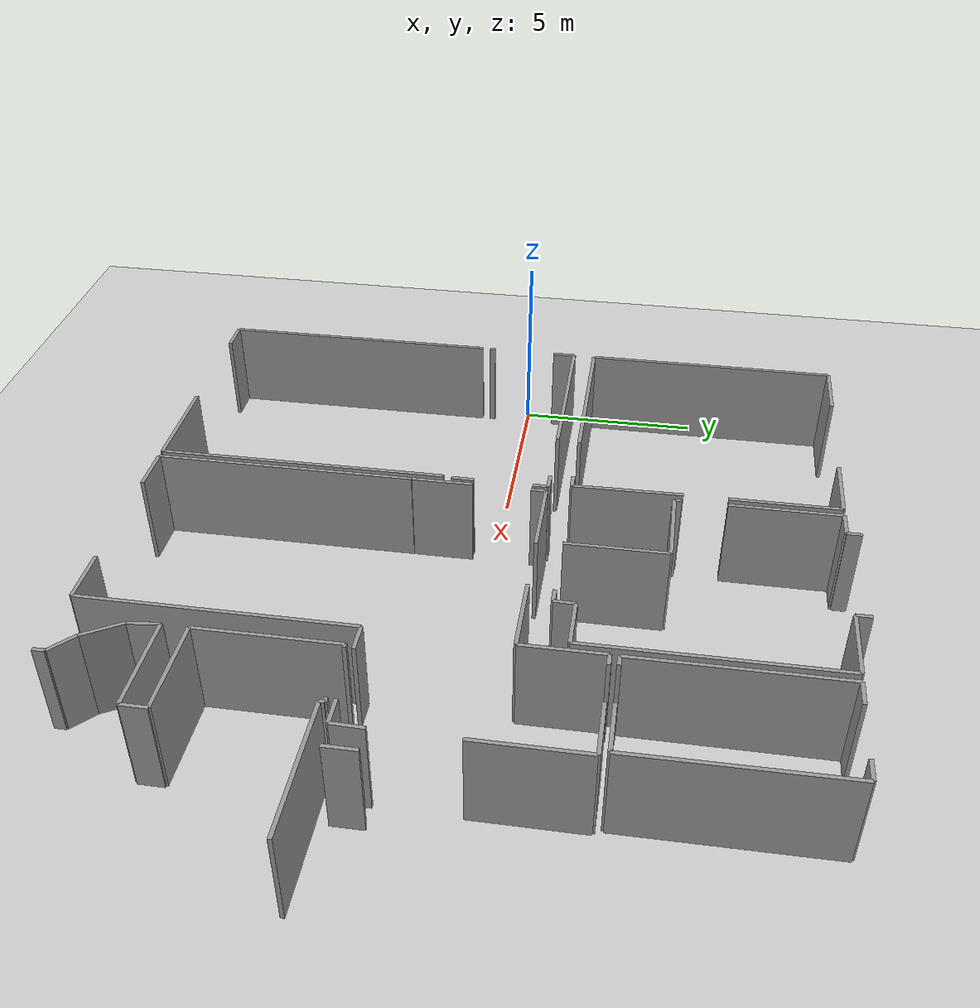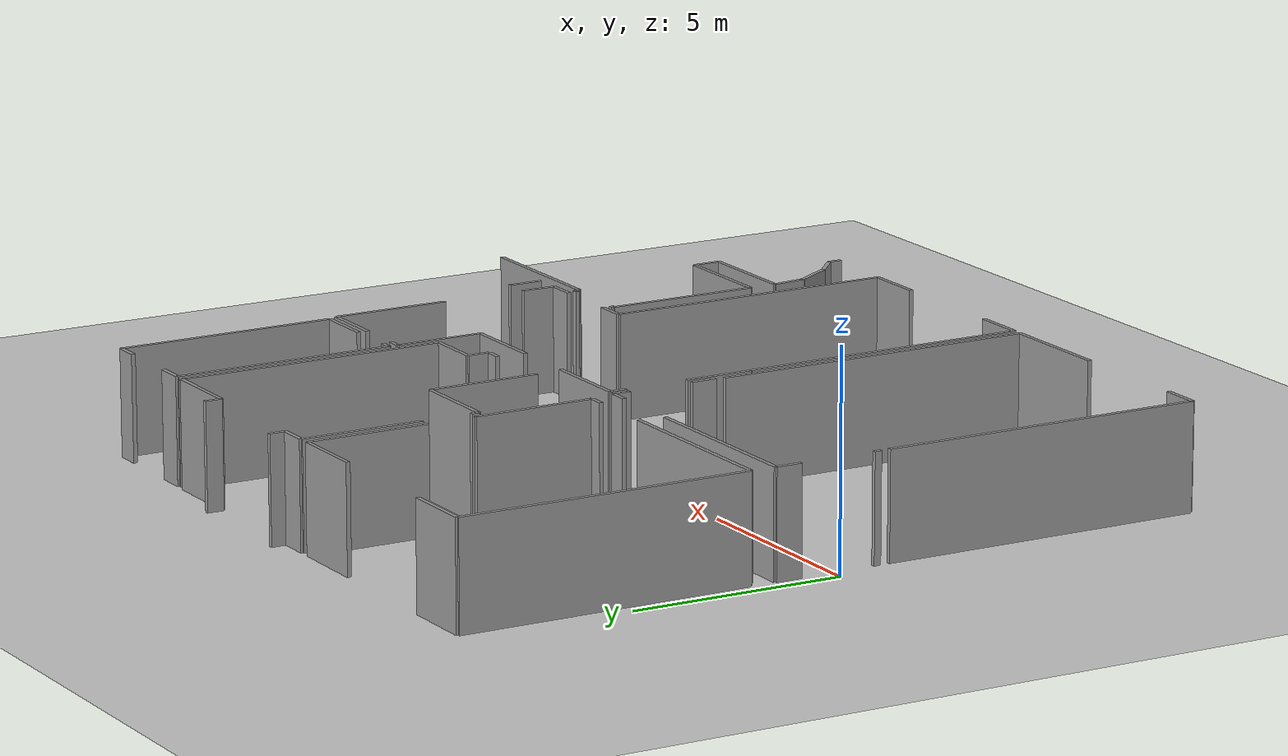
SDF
<sdf version="1.6">
 <world name="default">
  <model name="ground_plane">
   <static>1</static>
   <link name="link">
    <collision name="collision">
     <geometry><plane><normal>0 0 1</normal><size>100 100</size></plane></geometry>
     <surface><friction><ode><mu>100</mu><mu2>50</mu2></ode></friction></surface>
    </collision>
    <visual name="visual">
     <cast_shadows>0</cast_shadows>
     <geometry><plane><normal>0 0 1</normal><size>100 100</size></plane></geometry>
     <material>
      <script><uri>file://media/materials/scripts/gazebo.material</uri><name>Gazebo/Grey</name></script>
     </material>
    </visual>
   </link>
  </model>
  <model name="0510034869_A-40">
   <static>1</static>
   <link name="Wall_114">
    <collision name="Wall_114_Collision">
     <geometry><box><size>0.40546031746 0.1 2.5</size></box></geometry>
     <pose>0.20273015873 0 1.25 0 0 0</pose>
    </collision>
    <visual name="Wall_114_Visual">
     <pose>0.20273015873 0 1.25 0 0 0</pose>
     <geometry><box><size>0.40546031746 0.1 2.5</size></box></geometry>
     <material>
      <script><uri>file://media/materials/scripts/gazebo.material</uri><name>Gazebo/Grey</name></script>
      <ambient>1 1 1 1</ambient>
     </material>
    </visual>
    <pose>39.5118730159 -7.32088888889 0 0 0 3.14159265359</pose>
   </link>
   <link name="Wall_115">
    <collision name="Wall_115_Collision">
     <geometry><box><size>4.63771428571 0.1 2.5</size></box></geometry>
     <pose>2.31885714286 0 1.25 0 0 0</pose>
    </collision>
    <visual name="Wall_115_Visual">
     <pose>2.31885714286 0 1.25 0 0 0</pose>
     <geometry><box><size>4.63771428571 0.1 2.5</size></box></geometry>
     <material>
      <script><uri>file://media/materials/scripts/gazebo.material</uri><name>Gazebo/Grey</name></script>
      <ambient>1 1 1 1</ambient>
     </material>
    </visual>
    <pose>37.5080634921 -7.32088888889 0 0 0 3.14159265359</pose>
   </link>
   <link name="Wall_116">
    <collision name="Wall_116_Collision">
     <geometry><box><size>6.91301587302 0.1 2.5</size></box></geometry>
     <pose>3.45650793651 0 1.25 0 0 0</pose>
    </collision>
    <visual name="Wall_116_Visual">
     <pose>3.45650793651 0 1.25 0 0 0</pose>
     <geometry><box><size>6.91301587302 0.1 2.5</size></box></geometry>
     <material>
      <script><uri>file://media/materials/scripts/gazebo.material</uri><name>Gazebo/Grey</name></script>
      <ambient>1 1 1 1</ambient>
     </material>
    </visual>
    <pose>32.8703492063 -7.32088888889 0 0 0 1.57079632679</pose>
   </link>
   <link name="Wall_117">
    <collision name="Wall_117_Collision">
     <geometry><box><size>1.69384126984 0.1 2.5</size></box></geometry>
     <pose>0.846920634921 0 1.25 0 0 0</pose>
    </collision>
    <visual name="Wall_117_Visual">
     <pose>0.846920634921 0 1.25 0 0 0</pose>
     <geometry><box><size>1.69384126984 0.1 2.5</size></box></geometry>
     <material>
      <script><uri>file://media/materials/scripts/gazebo.material</uri><name>Gazebo/Grey</name></script>
      <ambient>1 1 1 1</ambient>
     </material>
    </visual>
    <pose>32.8703492063 -0.407873015873 0 0 0 0.0</pose>
   </link>
   <link name="Wall_118">
    <collision name="Wall_118_Collision">
     <geometry><box><size>1.84457142857 0.1 2.5</size></box></geometry>
     <pose>0.922285714286 0 1.25 0 0 0</pose>
    </collision>
    <visual name="Wall_118_Visual">
     <pose>0.922285714286 0 1.25 0 0 0</pose>
     <geometry><box><size>1.84457142857 0.1 2.5</size></box></geometry>
     <material>
      <script><uri>file://media/materials/scripts/gazebo.material</uri><name>Gazebo/Grey</name></script>
      <ambient>1 1 1 1</ambient>
     </material>
    </visual>
    <pose>37.6275555556 -0.407873015873 0 0 0 0.0</pose>
   </link>
   <link name="Wall_119">
    <collision name="Wall_119_Collision">
     <geometry><box><size>2.88063492063 0.1 2.5</size></box></geometry>
     <pose>1.44031746032 0 1.25 0 0 0</pose>
    </collision>
    <visual name="Wall_119_Visual">
     <pose>1.44031746032 0 1.25 0 0 0</pose>
     <geometry><box><size>2.88063492063 0.1 2.5</size></box></geometry>
     <material>
      <script><uri>file://media/materials/scripts/gazebo.material</uri><name>Gazebo/Grey</name></script>
      <ambient>1 1 1 1</ambient>
     </material>
    </visual>
    <pose>39.4721269841 -0.407873015873 0 0 0 -1.57079632679</pose>
   </link>
   <link name="Wall_120">
    <collision name="Wall_120_Collision">
     <geometry><box><size>2.88040122062 0.1 2.5</size></box></geometry>
     <pose>1.44020061031 0 1.25 0 0 0</pose>
    </collision>
    <visual name="Wall_120_Visual">
     <pose>1.44020061031 0 1.25 0 0 0</pose>
     <geometry><box><size>2.88040122062 0.1 2.5</size></box></geometry>
     <material>
      <script><uri>file://media/materials/scripts/gazebo.material</uri><name>Gazebo/Grey</name></script>
      <ambient>1 1 1 1</ambient>
     </material>
    </visual>
    <pose>39.4721269841 -4.44076190476 0 0 0 -1.55699710574</pose>
   </link>
   <link name="Wall_125">
    <collision name="Wall_125_Collision">
     <geometry><box><size>2.79542857143 0.1 2.5</size></box></geometry>
     <pose>1.39771428571 0 1.25 0 0 0</pose>
    </collision>
    <visual name="Wall_125_Visual">
     <pose>1.39771428571 0 1.25 0 0 0</pose>
     <geometry><box><size>2.79542857143 0.1 2.5</size></box></geometry>
     <material>
      <script><uri>file://media/materials/scripts/gazebo.material</uri><name>Gazebo/Grey</name></script>
      <ambient>1 1 1 1</ambient>
     </material>
    </visual>
    <pose>39.608 -18.4011428571 0 0 0 3.14159265359</pose>
   </link>
   <link name="Wall_126">
    <collision name="Wall_126_Collision">
     <geometry><box><size>0.910095238095 0.1 2.5</size></box></geometry>
     <pose>0.455047619048 0 1.25 0 0 0</pose>
    </collision>
    <visual name="Wall_126_Visual">
     <pose>0.455047619048 0 1.25 0 0 0</pose>
     <geometry><box><size>0.910095238095 0.1 2.5</size></box></geometry>
     <material>
      <script><uri>file://media/materials/scripts/gazebo.material</uri><name>Gazebo/Grey</name></script>
      <ambient>1 1 1 1</ambient>
     </material>
    </visual>
    <pose>33.764952381 -18.4011428571 0 0 0 3.14159265359</pose>
   </link>
   <link name="Wall_127">
    <collision name="Wall_127_Collision">
     <geometry><box><size>7.70450793651 0.1 2.5</size></box></geometry>
     <pose>3.85225396825 0 1.25 0 0 0</pose>
    </collision>
    <visual name="Wall_127_Visual">
     <pose>3.85225396825 0 1.25 0 0 0</pose>
     <geometry><box><size>7.70450793651 0.1 2.5</size></box></geometry>
     <material>
      <script><uri>file://media/materials/scripts/gazebo.material</uri><name>Gazebo/Grey</name></script>
      <ambient>1 1 1 1</ambient>
     </material>
    </visual>
    <pose>32.8548571429 -18.4011428571 0 0 0 1.57079632679</pose>
   </link>
   <link name="Wall_128">
    <collision name="Wall_128_Collision">
     <geometry><box><size>7.70452535068 0.1 2.5</size></box></geometry>
     <pose>3.85226267534 0 1.25 0 0 0</pose>
    </collision>
    <visual name="Wall_128_Visual">
     <pose>3.85226267534 0 1.25 0 0 0</pose>
     <geometry><box><size>7.70452535068 0.1 2.5</size></box></geometry>
     <material>
      <script><uri>file://media/materials/scripts/gazebo.material</uri><name>Gazebo/Grey</name></script>
      <ambient>1 1 1 1</ambient>
     </material>
    </visual>
    <pose>39.5916190476 -10.6966349206 0 0 0 -1.56867017833</pose>
   </link>
   <link name="Wall_135">
    <collision name="Wall_135_Collision">
     <geometry><box><size>0.163301587302 0.1 2.5</size></box></geometry>
     <pose>0.0816507936508 0 1.25 0 0 0</pose>
    </collision>
    <visual name="Wall_135_Visual">
     <pose>0.0816507936508 0 1.25 0 0 0</pose>
     <geometry><box><size>0.163301587302 0.1 2.5</size></box></geometry>
     <material>
      <script><uri>file://media/materials/scripts/gazebo.material</uri><name>Gazebo/Grey</name></script>
      <ambient>1 1 1 1</ambient>
     </material>
    </visual>
    <pose>32.8624761905 -10.4824126984 0 0 0 1.57079632679</pose>
   </link>
   <link name="Wall_136">
    <collision name="Wall_136_Collision">
     <geometry><box><size>0.617904761905 0.1 2.5</size></box></geometry>
     <pose>0.308952380952 0 1.25 0 0 0</pose>
    </collision>
    <visual name="Wall_136_Visual">
     <pose>0.308952380952 0 1.25 0 0 0</pose>
     <geometry><box><size>0.617904761905 0.1 2.5</size></box></geometry>
     <material>
      <script><uri>file://media/materials/scripts/gazebo.material</uri><name>Gazebo/Grey</name></script>
      <ambient>1 1 1 1</ambient>
     </material>
    </visual>
    <pose>32.8624761905 -8.54031746032 0 0 0 1.57079632679</pose>
   </link>
   <link name="Wall_137">
    <collision name="Wall_137_Collision">
     <geometry><box><size>4.55123809524 0.1 2.5</size></box></geometry>
     <pose>2.27561904762 0 1.25 0 0 0</pose>
    </collision>
    <visual name="Wall_137_Visual">
     <pose>2.27561904762 0 1.25 0 0 0</pose>
     <geometry><box><size>4.55123809524 0.1 2.5</size></box></geometry>
     <material>
      <script><uri>file://media/materials/scripts/gazebo.material</uri><name>Gazebo/Grey</name></script>
      <ambient>1 1 1 1</ambient>
     </material>
    </visual>
    <pose>32.8624761905 -7.92241269841 0 0 0 0.0</pose>
   </link>
   <link name="Wall_138">
    <collision name="Wall_138_Collision">
     <geometry><box><size>0.467301587302 0.1 2.5</size></box></geometry>
     <pose>0.233650793651 0 1.25 0 0 0</pose>
    </collision>
    <visual name="Wall_138_Visual">
     <pose>0.233650793651 0 1.25 0 0 0</pose>
     <geometry><box><size>0.467301587302 0.1 2.5</size></box></geometry>
     <material>
      <script><uri>file://media/materials/scripts/gazebo.material</uri><name>Gazebo/Grey</name></script>
      <ambient>1 1 1 1</ambient>
     </material>
    </visual>
    <pose>39.174984127 -7.92241269841 0 0 0 0.0</pose>
   </link>
   <link name="Wall_139">
    <collision name="Wall_139_Collision">
     <geometry><box><size>0.411428571429 0.1 2.5</size></box></geometry>
     <pose>0.205714285714 0 1.25 0 0 0</pose>
    </collision>
    <visual name="Wall_139_Visual">
     <pose>0.205714285714 0 1.25 0 0 0</pose>
     <geometry><box><size>0.411428571429 0.1 2.5</size></box></geometry>
     <material>
      <script><uri>file://media/materials/scripts/gazebo.material</uri><name>Gazebo/Grey</name></script>
      <ambient>1 1 1 1</ambient>
     </material>
    </visual>
    <pose>39.6422857143 -7.92241269841 0 0 0 -1.57079632679</pose>
   </link>
   <link name="Wall_140">
    <collision name="Wall_140_Collision">
     <geometry><box><size>0.599108163931 0.1 2.5</size></box></geometry>
     <pose>0.299554081965 0 1.25 0 0 0</pose>
    </collision>
    <visual name="Wall_140_Visual">
     <pose>0.299554081965 0 1.25 0 0 0</pose>
     <geometry><box><size>0.599108163931 0.1 2.5</size></box></geometry>
     <material>
      <script><uri>file://media/materials/scripts/gazebo.material</uri><name>Gazebo/Grey</name></script>
      <ambient>1 1 1 1</ambient>
     </material>
    </visual>
    <pose>39.6422857143 -9.88342857143 0 0 0 -1.59114543616</pose>
   </link>
   <link name="Wall_141">
    <collision name="Wall_141_Collision">
     <geometry><box><size>0.395555555556 0.1 2.5</size></box></geometry>
     <pose>0.197777777778 0 1.25 0 0 0</pose>
    </collision>
    <visual name="Wall_141_Visual">
     <pose>0.197777777778 0 1.25 0 0 0</pose>
     <geometry><box><size>0.395555555556 0.1 2.5</size></box></geometry>
     <material>
      <script><uri>file://media/materials/scripts/gazebo.material</uri><name>Gazebo/Grey</name></script>
      <ambient>1 1 1 1</ambient>
     </material>
    </visual>
    <pose>44.0833015873 -7.29892063492 0 0 0 3.14159265359</pose>
   </link>
   <link name="Wall_142">
    <collision name="Wall_142_Collision">
     <geometry><box><size>2.6353015873 0.1 2.5</size></box></geometry>
     <pose>1.31765079365 0 1.25 0 0 0</pose>
    </collision>
    <visual name="Wall_142_Visual">
     <pose>1.31765079365 0 1.25 0 0 0</pose>
     <geometry><box><size>2.6353015873 0.1 2.5</size></box></geometry>
     <material>
      <script><uri>file://media/materials/scripts/gazebo.material</uri><name>Gazebo/Grey</name></script>
      <ambient>1 1 1 1</ambient>
     </material>
    </visual>
    <pose>41.9153015873 -7.29892063492 0 0 0 1.57079632679</pose>
   </link>
   <link name="Wall_143">
    <collision name="Wall_143_Collision">
     <geometry><box><size>2.17968253968 0.1 2.5</size></box></geometry>
     <pose>1.08984126984 0 1.25 0 0 0</pose>
    </collision>
    <visual name="Wall_143_Visual">
     <pose>1.08984126984 0 1.25 0 0 0</pose>
     <geometry><box><size>2.17968253968 0.1 2.5</size></box></geometry>
     <material>
      <script><uri>file://media/materials/scripts/gazebo.material</uri><name>Gazebo/Grey</name></script>
      <ambient>1 1 1 1</ambient>
     </material>
    </visual>
    <pose>41.9153015873 -4.66361904762 0 0 0 3.14159265359</pose>
   </link>
   <link name="Wall_144">
    <collision name="Wall_144_Collision">
     <geometry><box><size>0.192 0.1 2.5</size></box></geometry>
     <pose>0.096 0 1.25 0 0 0</pose>
    </collision>
    <visual name="Wall_144_Visual">
     <pose>0.096 0 1.25 0 0 0</pose>
     <geometry><box><size>0.192 0.1 2.5</size></box></geometry>
     <material>
      <script><uri>file://media/materials/scripts/gazebo.material</uri><name>Gazebo/Grey</name></script>
      <ambient>1 1 1 1</ambient>
     </material>
    </visual>
    <pose>39.7356190476 -4.66361904762 0 0 0 1.57079632679</pose>
   </link>
   <link name="Wall_145">
    <collision name="Wall_145_Collision">
     <geometry><box><size>2.89726984127 0.1 2.5</size></box></geometry>
     <pose>1.44863492063 0 1.25 0 0 0</pose>
    </collision>
    <visual name="Wall_145_Visual">
     <pose>1.44863492063 0 1.25 0 0 0</pose>
     <geometry><box><size>2.89726984127 0.1 2.5</size></box></geometry>
     <material>
      <script><uri>file://media/materials/scripts/gazebo.material</uri><name>Gazebo/Grey</name></script>
      <ambient>1 1 1 1</ambient>
     </material>
    </visual>
    <pose>39.7356190476 -3.29688888889 0 0 0 1.57079632679</pose>
   </link>
   <link name="Wall_146">
    <collision name="Wall_146_Collision">
     <geometry><box><size>0.733968253968 0.1 2.5</size></box></geometry>
     <pose>0.366984126984 0 1.25 0 0 0</pose>
    </collision>
    <visual name="Wall_146_Visual">
     <pose>0.366984126984 0 1.25 0 0 0</pose>
     <geometry><box><size>0.733968253968 0.1 2.5</size></box></geometry>
     <material>
      <script><uri>file://media/materials/scripts/gazebo.material</uri><name>Gazebo/Grey</name></script>
      <ambient>1 1 1 1</ambient>
     </material>
    </visual>
    <pose>39.7356190476 -0.399619047619 0 0 0 0.0</pose>
   </link>
   <link name="Wall_147">
    <collision name="Wall_147_Collision">
     <geometry><box><size>0.392507936508 0.1 2.5</size></box></geometry>
     <pose>0.196253968254 0 1.25 0 0 0</pose>
    </collision>
    <visual name="Wall_147_Visual">
     <pose>0.196253968254 0 1.25 0 0 0</pose>
     <geometry><box><size>0.392507936508 0.1 2.5</size></box></geometry>
     <material>
      <script><uri>file://media/materials/scripts/gazebo.material</uri><name>Gazebo/Grey</name></script>
      <ambient>1 1 1 1</ambient>
     </material>
    </visual>
    <pose>40.4695873016 -0.399619047619 0 0 0 1.57079632679</pose>
   </link>
   <link name="Wall_148">
    <collision name="Wall_148_Collision">
     <geometry><box><size>0.400761904762 0.1 2.5</size></box></geometry>
     <pose>0.200380952381 0 1.25 0 0 0</pose>
    </collision>
    <visual name="Wall_148_Visual">
     <pose>0.200380952381 0 1.25 0 0 0</pose>
     <geometry><box><size>0.400761904762 0.1 2.5</size></box></geometry>
     <material>
      <script><uri>file://media/materials/scripts/gazebo.material</uri><name>Gazebo/Grey</name></script>
      <ambient>1 1 1 1</ambient>
     </material>
    </visual>
    <pose>43.5182222222 -0.00711111111112 0 0 0 -1.57079632679</pose>
   </link>
   <link name="Wall_149">
    <collision name="Wall_149_Collision">
     <geometry><box><size>1.90476190476 0.1 2.5</size></box></geometry>
     <pose>0.952380952381 0 1.25 0 0 0</pose>
    </collision>
    <visual name="Wall_149_Visual">
     <pose>0.952380952381 0 1.25 0 0 0</pose>
     <geometry><box><size>1.90476190476 0.1 2.5</size></box></geometry>
     <material>
      <script><uri>file://media/materials/scripts/gazebo.material</uri><name>Gazebo/Grey</name></script>
      <ambient>1 1 1 1</ambient>
     </material>
    </visual>
    <pose>43.5182222222 -0.407873015873 0 0 0 0.0</pose>
   </link>
   <link name="Wall_150">
    <collision name="Wall_150_Collision">
     <geometry><box><size>6.36431746032 0.1 2.5</size></box></geometry>
     <pose>3.18215873016 0 1.25 0 0 0</pose>
    </collision>
    <visual name="Wall_150_Visual">
     <pose>3.18215873016 0 1.25 0 0 0</pose>
     <geometry><box><size>6.36431746032 0.1 2.5</size></box></geometry>
     <material>
      <script><uri>file://media/materials/scripts/gazebo.material</uri><name>Gazebo/Grey</name></script>
      <ambient>1 1 1 1</ambient>
     </material>
    </visual>
    <pose>45.422984127 -0.407873015873 0 0 0 -1.57079632679</pose>
   </link>
   <link name="Wall_151">
    <collision name="Wall_151_Collision">
     <geometry><box><size>1.32838095238 0.1 2.5</size></box></geometry>
     <pose>0.66419047619 0 1.25 0 0 0</pose>
    </collision>
    <visual name="Wall_151_Visual">
     <pose>0.66419047619 0 1.25 0 0 0</pose>
     <geometry><box><size>1.32838095238 0.1 2.5</size></box></geometry>
     <material>
      <script><uri>file://media/materials/scripts/gazebo.material</uri><name>Gazebo/Grey</name></script>
      <ambient>1 1 1 1</ambient>
     </material>
    </visual>
    <pose>45.422984127 -6.77219047619 0 0 0 3.14159265359</pose>
   </link>
   <link name="Wall_152">
    <collision name="Wall_152_Collision">
     <geometry><box><size>0.526851388905 0.1 2.5</size></box></geometry>
     <pose>0.263425694453 0 1.25 0 0 0</pose>
    </collision>
    <visual name="Wall_152_Visual">
     <pose>0.263425694453 0 1.25 0 0 0</pose>
     <geometry><box><size>0.526851388905 0.1 2.5</size></box></geometry>
     <material>
      <script><uri>file://media/materials/scripts/gazebo.material</uri><name>Gazebo/Grey</name></script>
      <ambient>1 1 1 1</ambient>
     </material>
    </visual>
    <pose>44.0946031746 -6.77219047619 0 0 0 -1.59224915859</pose>
   </link>
   <link name="Wall_153">
    <collision name="Wall_153_Collision">
     <geometry><box><size>0.697904761905 0.1 2.5</size></box></geometry>
     <pose>0.348952380952 0 1.25 0 0 0</pose>
    </collision>
    <visual name="Wall_153_Visual">
     <pose>0.348952380952 0 1.25 0 0 0</pose>
     <geometry><box><size>0.697904761905 0.1 2.5</size></box></geometry>
     <material>
      <script><uri>file://media/materials/scripts/gazebo.material</uri><name>Gazebo/Grey</name></script>
      <ambient>1 1 1 1</ambient>
     </material>
    </visual>
    <pose>48.5984761905 -11.4932063492 0 0 0 3.14159265359</pose>
   </link>
   <link name="Wall_154">
    <collision name="Wall_154_Collision">
     <geometry><box><size>0.72380952381 0.1 2.5</size></box></geometry>
     <pose>0.361904761905 0 1.25 0 0 0</pose>
    </collision>
    <visual name="Wall_154_Visual">
     <pose>0.361904761905 0 1.25 0 0 0</pose>
     <geometry><box><size>0.72380952381 0.1 2.5</size></box></geometry>
     <material>
      <script><uri>file://media/materials/scripts/gazebo.material</uri><name>Gazebo/Grey</name></script>
      <ambient>1 1 1 1</ambient>
     </material>
    </visual>
    <pose>46.3508571429 -11.4932063492 0 0 0 3.14159265359</pose>
   </link>
   <link name="Wall_155">
    <collision name="Wall_155_Collision">
     <geometry><box><size>1.60622222222 0.1 2.5</size></box></geometry>
     <pose>0.803111111111 0 1.25 0 0 0</pose>
    </collision>
    <visual name="Wall_155_Visual">
     <pose>0.803111111111 0 1.25 0 0 0</pose>
     <geometry><box><size>1.60622222222 0.1 2.5</size></box></geometry>
     <material>
      <script><uri>file://media/materials/scripts/gazebo.material</uri><name>Gazebo/Grey</name></script>
      <ambient>1 1 1 1</ambient>
     </material>
    </visual>
    <pose>39.8412698413 -11.4932063492 0 0 0 1.57079632679</pose>
   </link>
   <link name="Wall_156">
    <collision name="Wall_156_Collision">
     <geometry><box><size>0.392380952381 0.1 2.5</size></box></geometry>
     <pose>0.19619047619 0 1.25 0 0 0</pose>
    </collision>
    <visual name="Wall_156_Visual">
     <pose>0.19619047619 0 1.25 0 0 0</pose>
     <geometry><box><size>0.392380952381 0.1 2.5</size></box></geometry>
     <material>
      <script><uri>file://media/materials/scripts/gazebo.material</uri><name>Gazebo/Grey</name></script>
      <ambient>1 1 1 1</ambient>
     </material>
    </visual>
    <pose>39.8412698413 -8.34819047619 0 0 0 1.57079632679</pose>
   </link>
   <link name="Wall_157">
    <collision name="Wall_157_Collision">
     <geometry><box><size>2.17295238095 0.1 2.5</size></box></geometry>
     <pose>1.08647619048 0 1.25 0 0 0</pose>
    </collision>
    <visual name="Wall_157_Visual">
     <pose>1.08647619048 0 1.25 0 0 0</pose>
     <geometry><box><size>2.17295238095 0.1 2.5</size></box></geometry>
     <material>
      <script><uri>file://media/materials/scripts/gazebo.material</uri><name>Gazebo/Grey</name></script>
      <ambient>1 1 1 1</ambient>
     </material>
    </visual>
    <pose>39.8412698413 -7.95580952381 0 0 0 0.0</pose>
   </link>
   <link name="Wall_158">
    <collision name="Wall_158_Collision">
     <geometry><box><size>2.0706031746 0.1 2.5</size></box></geometry>
     <pose>1.0353015873 0 1.25 0 0 0</pose>
    </collision>
    <visual name="Wall_158_Visual">
     <pose>1.0353015873 0 1.25 0 0 0</pose>
     <geometry><box><size>2.0706031746 0.1 2.5</size></box></geometry>
     <material>
      <script><uri>file://media/materials/scripts/gazebo.material</uri><name>Gazebo/Grey</name></script>
      <ambient>1 1 1 1</ambient>
     </material>
    </visual>
    <pose>43.5922539683 -7.95580952381 0 0 0 0.0</pose>
   </link>
   <link name="Wall_159">
    <collision name="Wall_159_Collision">
     <geometry><box><size>2.0946031746 0.1 2.5</size></box></geometry>
     <pose>1.0473015873 0 1.25 0 0 0</pose>
    </collision>
    <visual name="Wall_159_Visual">
     <pose>1.0473015873 0 1.25 0 0 0</pose>
     <geometry><box><size>2.0946031746 0.1 2.5</size></box></geometry>
     <material>
      <script><uri>file://media/materials/scripts/gazebo.material</uri><name>Gazebo/Grey</name></script>
      <ambient>1 1 1 1</ambient>
     </material>
    </visual>
    <pose>45.6628571429 -7.95580952381 0 0 0 1.57079632679</pose>
   </link>
   <link name="Wall_160">
    <collision name="Wall_160_Collision">
     <geometry><box><size>0.326349206349 0.1 2.5</size></box></geometry>
     <pose>0.163174603175 0 1.25 0 0 0</pose>
    </collision>
    <visual name="Wall_160_Visual">
     <pose>0.163174603175 0 1.25 0 0 0</pose>
     <geometry><box><size>0.326349206349 0.1 2.5</size></box></geometry>
     <material>
      <script><uri>file://media/materials/scripts/gazebo.material</uri><name>Gazebo/Grey</name></script>
      <ambient>1 1 1 1</ambient>
     </material>
    </visual>
    <pose>45.6628571429 -5.86120634921 0 0 0 0.0</pose>
   </link>
   <link name="Wall_161">
    <collision name="Wall_161_Collision">
     <geometry><box><size>1.49561904762 0.1 2.5</size></box></geometry>
     <pose>0.74780952381 0 1.25 0 0 0</pose>
    </collision>
    <visual name="Wall_161_Visual">
     <pose>0.74780952381 0 1.25 0 0 0</pose>
     <geometry><box><size>1.49561904762 0.1 2.5</size></box></geometry>
     <material>
      <script><uri>file://media/materials/scripts/gazebo.material</uri><name>Gazebo/Grey</name></script>
      <ambient>1 1 1 1</ambient>
     </material>
    </visual>
    <pose>47.1219047619 -5.86120634921 0 0 0 0.0</pose>
   </link>
   <link name="Wall_162">
    <collision name="Wall_162_Collision">
     <geometry><box><size>2.78717460317 0.1 2.5</size></box></geometry>
     <pose>1.39358730159 0 1.25 0 0 0</pose>
    </collision>
    <visual name="Wall_162_Visual">
     <pose>1.39358730159 0 1.25 0 0 0</pose>
     <geometry><box><size>2.78717460317 0.1 2.5</size></box></geometry>
     <material>
      <script><uri>file://media/materials/scripts/gazebo.material</uri><name>Gazebo/Grey</name></script>
      <ambient>1 1 1 1</ambient>
     </material>
    </visual>
    <pose>48.6175238095 -5.86120634921 0 0 0 -1.57079632679</pose>
   </link>
   <link name="Wall_163">
    <collision name="Wall_163_Collision">
     <geometry><box><size>0.809493970194 0.1 2.5</size></box></geometry>
     <pose>0.404746985097 0 1.25 0 0 0</pose>
    </collision>
    <visual name="Wall_163_Visual">
     <pose>0.404746985097 0 1.25 0 0 0</pose>
     <geometry><box><size>0.809493970194 0.1 2.5</size></box></geometry>
     <material>
      <script><uri>file://media/materials/scripts/gazebo.material</uri><name>Gazebo/Grey</name></script>
      <ambient>1 1 1 1</ambient>
     </material>
    </visual>
    <pose>48.6175238095 -10.6839365079 0 0 0 -1.59432877779</pose>
   </link>
   <link name="Wall_164">
    <collision name="Wall_164_Collision">
     <geometry><box><size>1.43974603175 0.1 2.5</size></box></geometry>
     <pose>0.719873015873 0 1.25 0 0 0</pose>
    </collision>
    <visual name="Wall_164_Visual">
     <pose>0.719873015873 0 1.25 0 0 0</pose>
     <geometry><box><size>1.43974603175 0.1 2.5</size></box></geometry>
     <material>
      <script><uri>file://media/materials/scripts/gazebo.material</uri><name>Gazebo/Grey</name></script>
      <ambient>1 1 1 1</ambient>
     </material>
    </visual>
    <pose>45.6003809524 -18.410031746 0 0 0 3.14159265359</pose>
   </link>
   <link name="Wall_165">
    <collision name="Wall_165_Collision">
     <geometry><box><size>1.25244444444 0.1 2.5</size></box></geometry>
     <pose>0.626222222222 0 1.25 0 0 0</pose>
    </collision>
    <visual name="Wall_165_Visual">
     <pose>0.626222222222 0 1.25 0 0 0</pose>
     <geometry><box><size>1.25244444444 0.1 2.5</size></box></geometry>
     <material>
      <script><uri>file://media/materials/scripts/gazebo.material</uri><name>Gazebo/Grey</name></script>
      <ambient>1 1 1 1</ambient>
     </material>
    </visual>
    <pose>41.0957460317 -18.410031746 0 0 0 3.14159265359</pose>
   </link>
   <link name="Wall_166">
    <collision name="Wall_166_Collision">
     <geometry><box><size>6.90565079365 0.1 2.5</size></box></geometry>
     <pose>3.45282539683 0 1.25 0 0 0</pose>
    </collision>
    <visual name="Wall_166_Visual">
     <pose>3.45282539683 0 1.25 0 0 0</pose>
     <geometry><box><size>6.90565079365 0.1 2.5</size></box></geometry>
     <material>
      <script><uri>file://media/materials/scripts/gazebo.material</uri><name>Gazebo/Grey</name></script>
      <ambient>1 1 1 1</ambient>
     </material>
    </visual>
    <pose>39.8433015873 -18.410031746 0 0 0 1.57079632679</pose>
   </link>
   <link name="Wall_167">
    <collision name="Wall_167_Collision">
     <geometry><box><size>6.90566492063 0.1 2.5</size></box></geometry>
     <pose>3.45283246031 0 1.25 0 0 0</pose>
    </collision>
    <visual name="Wall_167_Visual">
     <pose>3.45283246031 0 1.25 0 0 0</pose>
     <geometry><box><size>6.90566492063 0.1 2.5</size></box></geometry>
     <material>
      <script><uri>file://media/materials/scripts/gazebo.material</uri><name>Gazebo/Grey</name></script>
      <ambient>1 1 1 1</ambient>
     </material>
    </visual>
    <pose>45.6143492063 -11.5043809524 0 0 0 -1.57281905214</pose>
   </link>
   <link name="Wall_168">
    <collision name="Wall_168_Collision">
     <geometry><box><size>1.3939047619 0.1 2.5</size></box></geometry>
     <pose>0.696952380952 0 1.25 0 0 0</pose>
    </collision>
    <visual name="Wall_168_Visual">
     <pose>0.696952380952 0 1.25 0 0 0</pose>
     <geometry><box><size>1.3939047619 0.1 2.5</size></box></geometry>
     <material>
      <script><uri>file://media/materials/scripts/gazebo.material</uri><name>Gazebo/Grey</name></script>
      <ambient>1 1 1 1</ambient>
     </material>
    </visual>
    <pose>48.5095873016 -5.63923809524 0 0 0 3.14159265359</pose>
   </link>
   <link name="Wall_169">
    <collision name="Wall_169_Collision">
     <geometry><box><size>0.288 0.1 2.5</size></box></geometry>
     <pose>0.144 0 1.25 0 0 0</pose>
    </collision>
    <visual name="Wall_169_Visual">
     <pose>0.144 0 1.25 0 0 0</pose>
     <geometry><box><size>0.288 0.1 2.5</size></box></geometry>
     <material>
      <script><uri>file://media/materials/scripts/gazebo.material</uri><name>Gazebo/Grey</name></script>
      <ambient>1 1 1 1</ambient>
     </material>
    </visual>
    <pose>45.9672380952 -5.63923809524 0 0 0 3.14159265359</pose>
   </link>
   <link name="Wall_170">
    <collision name="Wall_170_Collision">
     <geometry><box><size>5.2146031746 0.1 2.5</size></box></geometry>
     <pose>2.6073015873 0 1.25 0 0 0</pose>
    </collision>
    <visual name="Wall_170_Visual">
     <pose>2.6073015873 0 1.25 0 0 0</pose>
     <geometry><box><size>5.2146031746 0.1 2.5</size></box></geometry>
     <material>
      <script><uri>file://media/materials/scripts/gazebo.material</uri><name>Gazebo/Grey</name></script>
      <ambient>1 1 1 1</ambient>
     </material>
    </visual>
    <pose>45.6792380952 -5.63923809524 0 0 0 1.57079632679</pose>
   </link>
   <link name="Wall_171">
    <collision name="Wall_171_Collision">
     <geometry><box><size>0.687619047619 0.1 2.5</size></box></geometry>
     <pose>0.34380952381 0 1.25 0 0 0</pose>
    </collision>
    <visual name="Wall_171_Visual">
     <pose>0.34380952381 0 1.25 0 0 0</pose>
     <geometry><box><size>0.687619047619 0.1 2.5</size></box></geometry>
     <material>
      <script><uri>file://media/materials/scripts/gazebo.material</uri><name>Gazebo/Grey</name></script>
      <ambient>1 1 1 1</ambient>
     </material>
    </visual>
    <pose>45.6792380952 -0.424634920635 0 0 0 0.0</pose>
   </link>
   <link name="Wall_172">
    <collision name="Wall_172_Collision">
     <geometry><box><size>0.587428571429 0.1 2.5</size></box></geometry>
     <pose>0.293714285714 0 1.25 0 0 0</pose>
    </collision>
    <visual name="Wall_172_Visual">
     <pose>0.293714285714 0 1.25 0 0 0</pose>
     <geometry><box><size>0.587428571429 0.1 2.5</size></box></geometry>
     <material>
      <script><uri>file://media/materials/scripts/gazebo.material</uri><name>Gazebo/Grey</name></script>
      <ambient>1 1 1 1</ambient>
     </material>
    </visual>
    <pose>47.8935873016 -0.424634920635 0 0 0 0.0</pose>
   </link>
   <link name="Wall_173">
    <collision name="Wall_173_Collision">
     <geometry><box><size>5.21468144714 0.1 2.5</size></box></geometry>
     <pose>2.60734072357 0 1.25 0 0 0</pose>
    </collision>
    <visual name="Wall_173_Visual">
     <pose>2.60734072357 0 1.25 0 0 0</pose>
     <geometry><box><size>5.21468144714 0.1 2.5</size></box></geometry>
     <material>
      <script><uri>file://media/materials/scripts/gazebo.material</uri><name>Gazebo/Grey</name></script>
      <ambient>1 1 1 1</ambient>
     </material>
    </visual>
    <pose>48.481015873 -0.424634920635 0 0 0 -1.56531726315</pose>
   </link>
   <link name="Wall_176">
    <collision name="Wall_176_Collision">
     <geometry><box><size>0.818285714286 0.1 2.5</size></box></geometry>
     <pose>0.409142857143 0 1.25 0 0 0</pose>
    </collision>
    <visual name="Wall_176_Visual">
     <pose>0.409142857143 0 1.25 0 0 0</pose>
     <geometry><box><size>0.818285714286 0.1 2.5</size></box></geometry>
     <material>
      <script><uri>file://media/materials/scripts/gazebo.material</uri><name>Gazebo/Grey</name></script>
      <ambient>1 1 1 1</ambient>
     </material>
    </visual>
    <pose>49.228952381 -11.496 0 0 0 1.57079632679</pose>
   </link>
   <link name="Wall_230">
    <collision name="Wall_230_Collision">
     <geometry><box><size>0.309841269841 0.1 2.5</size></box></geometry>
     <pose>0.154920634921 0 1.25 0 0 0</pose>
    </collision>
    <visual name="Wall_230_Visual">
     <pose>0.154920634921 0 1.25 0 0 0</pose>
     <geometry><box><size>0.309841269841 0.1 2.5</size></box></geometry>
     <material>
      <script><uri>file://media/materials/scripts/gazebo.material</uri><name>Gazebo/Grey</name></script>
      <ambient>1 1 1 1</ambient>
     </material>
    </visual>
    <pose>47.446984127 -18.5344761905 0 0 0 1.57079632679</pose>
   </link>
   <link name="Wall_231">
    <collision name="Wall_231_Collision">
     <geometry><box><size>0.769101513338 0.1 2.5</size></box></geometry>
     <pose>0.384550756669 0 1.25 0 0 0</pose>
    </collision>
    <visual name="Wall_231_Visual">
     <pose>0.384550756669 0 1.25 0 0 0</pose>
     <geometry><box><size>0.769101513338 0.1 2.5</size></box></geometry>
     <material>
      <script><uri>file://media/materials/scripts/gazebo.material</uri><name>Gazebo/Grey</name></script>
      <ambient>1 1 1 1</ambient>
     </material>
    </visual>
    <pose>47.446984127 -18.2246349206 0 0 0 2.4142510315</pose>
   </link>
   <link name="Wall_232">
    <collision name="Wall_232_Collision">
     <geometry><box><size>1.07412589152 0.1 2.5</size></box></geometry>
     <pose>0.537062945761 0 1.25 0 0 0</pose>
    </collision>
    <visual name="Wall_232_Visual">
     <pose>0.537062945761 0 1.25 0 0 0</pose>
     <geometry><box><size>1.07412589152 0.1 2.5</size></box></geometry>
     <material>
      <script><uri>file://media/materials/scripts/gazebo.material</uri><name>Gazebo/Grey</name></script>
      <ambient>1 1 1 1</ambient>
     </material>
    </visual>
    <pose>46.8725079365 -17.7132698413 0 0 0 2.12131280753</pose>
   </link>
   <link name="Wall_233">
    <collision name="Wall_233_Collision">
     <geometry><box><size>0.799773623804 0.1 2.5</size></box></geometry>
     <pose>0.399886811902 0 1.25 0 0 0</pose>
    </collision>
    <visual name="Wall_233_Visual">
     <pose>0.399886811902 0 1.25 0 0 0</pose>
     <geometry><box><size>0.799773623804 0.1 2.5</size></box></geometry>
     <material>
      <script><uri>file://media/materials/scripts/gazebo.material</uri><name>Gazebo/Grey</name></script>
      <ambient>1 1 1 1</ambient>
     </material>
    </visual>
    <pose>46.3106031746 -16.7978412698 0 0 0 1.67354573294</pose>
   </link>
   <link name="Wall_234">
    <collision name="Wall_234_Collision">
     <geometry><box><size>2.52533333333 0.1 2.5</size></box></geometry>
     <pose>1.26266666667 0 1.25 0 0 0</pose>
    </collision>
    <visual name="Wall_234_Visual">
     <pose>1.26266666667 0 1.25 0 0 0</pose>
     <geometry><box><size>2.52533333333 0.1 2.5</size></box></geometry>
     <material>
      <script><uri>file://media/materials/scripts/gazebo.material</uri><name>Gazebo/Grey</name></script>
      <ambient>1 1 1 1</ambient>
     </material>
    </visual>
    <pose>46.2285714286 -16.0022857143 0 0 0 0.0</pose>
   </link>
   <link name="Wall_235">
    <collision name="Wall_235_Collision">
     <geometry><box><size>0.662857142857 0.1 2.5</size></box></geometry>
     <pose>0.331428571429 0 1.25 0 0 0</pose>
    </collision>
    <visual name="Wall_235_Visual">
     <pose>0.331428571429 0 1.25 0 0 0</pose>
     <geometry><box><size>0.662857142857 0.1 2.5</size></box></geometry>
     <material>
      <script><uri>file://media/materials/scripts/gazebo.material</uri><name>Gazebo/Grey</name></script>
      <ambient>1 1 1 1</ambient>
     </material>
    </visual>
    <pose>48.7539047619 -16.0022857143 0 0 0 1.57079632679</pose>
   </link>
   <link name="Wall_236">
    <collision name="Wall_236_Collision">
     <geometry><box><size>2.51911111111 0.1 2.5</size></box></geometry>
     <pose>1.25955555556 0 1.25 0 0 0</pose>
    </collision>
    <visual name="Wall_236_Visual">
     <pose>1.25955555556 0 1.25 0 0 0</pose>
     <geometry><box><size>2.51911111111 0.1 2.5</size></box></geometry>
     <material>
      <script><uri>file://media/materials/scripts/gazebo.material</uri><name>Gazebo/Grey</name></script>
      <ambient>1 1 1 1</ambient>
     </material>
    </visual>
    <pose>48.7539047619 -15.3394285714 0 0 0 3.14159265359</pose>
   </link>
   <link name="Wall_237">
    <collision name="Wall_237_Collision">
     <geometry><box><size>3.62387301587 0.1 2.5</size></box></geometry>
     <pose>1.81193650794 0 1.25 0 0 0</pose>
    </collision>
    <visual name="Wall_237_Visual">
     <pose>1.81193650794 0 1.25 0 0 0</pose>
     <geometry><box><size>3.62387301587 0.1 2.5</size></box></geometry>
     <material>
      <script><uri>file://media/materials/scripts/gazebo.material</uri><name>Gazebo/Grey</name></script>
      <ambient>1 1 1 1</ambient>
     </material>
    </visual>
    <pose>46.2347936508 -15.3394285714 0 0 0 1.57079632679</pose>
   </link>
   <link name="Wall_238">
    <collision name="Wall_238_Collision">
     <geometry><box><size>0.113650793651 0.1 2.5</size></box></geometry>
     <pose>0.0568253968254 0 1.25 0 0 0</pose>
    </collision>
    <visual name="Wall_238_Visual">
     <pose>0.0568253968254 0 1.25 0 0 0</pose>
     <geometry><box><size>0.113650793651 0.1 2.5</size></box></geometry>
     <material>
      <script><uri>file://media/materials/scripts/gazebo.material</uri><name>Gazebo/Grey</name></script>
      <ambient>1 1 1 1</ambient>
     </material>
    </visual>
    <pose>46.2347936508 -11.7155555556 0 0 0 0.0</pose>
   </link>
   <link name="Wall_239">
    <collision name="Wall_239_Collision">
     <geometry><box><size>0.130666666667 0.1 2.5</size></box></geometry>
     <pose>0.0653333333333 0 1.25 0 0 0</pose>
    </collision>
    <visual name="Wall_239_Visual">
     <pose>0.0653333333333 0 1.25 0 0 0</pose>
     <geometry><box><size>0.130666666667 0.1 2.5</size></box></geometry>
     <material>
      <script><uri>file://media/materials/scripts/gazebo.material</uri><name>Gazebo/Grey</name></script>
      <ambient>1 1 1 1</ambient>
     </material>
    </visual>
    <pose>47.8914285714 -11.7155555556 0 0 0 0.0</pose>
   </link>
   <link name="Wall_240">
    <collision name="Wall_240_Collision">
     <geometry><box><size>0.120888888889 0.1 2.5</size></box></geometry>
     <pose>0.0604444444444 0 1.25 0 0 0</pose>
    </collision>
    <visual name="Wall_240_Visual">
     <pose>0.0604444444444 0 1.25 0 0 0</pose>
     <geometry><box><size>0.120888888889 0.1 2.5</size></box></geometry>
     <material>
      <script><uri>file://media/materials/scripts/gazebo.material</uri><name>Gazebo/Grey</name></script>
      <ambient>1 1 1 1</ambient>
     </material>
    </visual>
    <pose>48.0220952381 -11.7155555556 0 0 0 -1.57079632679</pose>
   </link>
   <link name="Wall_241">
    <collision name="Wall_241_Collision">
     <geometry><box><size>3.6493968254 0.1 2.5</size></box></geometry>
     <pose>1.8246984127 0 1.25 0 0 0</pose>
    </collision>
    <visual name="Wall_241_Visual">
     <pose>1.8246984127 0 1.25 0 0 0</pose>
     <geometry><box><size>3.6493968254 0.1 2.5</size></box></geometry>
     <material>
      <script><uri>file://media/materials/scripts/gazebo.material</uri><name>Gazebo/Grey</name></script>
      <ambient>1 1 1 1</ambient>
     </material>
    </visual>
    <pose>48.0220952381 -11.8364444444 0 0 0 0.0</pose>
   </link>
   <pose>-32.5 9.29793650794 0 0 0 0</pose>
  </model>
 </world>
</sdf>
